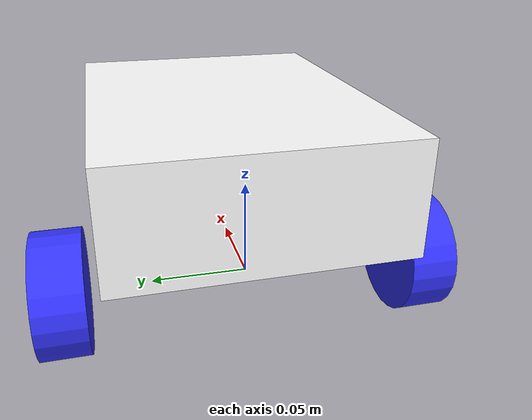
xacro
<?xml version="1.0"?>
<robot xmlns:xacro="http://www.ros.org/wiki/xacro" >

    <xacro:include filename="inertial_macros.xacro"/>

    <material name="white">
        <color rgba="1 1 1 1" />
    </material>

    <material name="orange">
        <color rgba="1 0.3 0.1 1"/>
    </material>

    <material name="blue">
        <color rgba="0.2 0.2 1 1"/>
    </material>

    <material name="black">
        <color rgba="0 0 0 1"/>
    </material>

    <material name="red">
        <color rgba="1 0 0 1"/>
    </material>

    <!-- BASE LINK -->

    <link name="base_link">

    </link>

    <!-- BASE_FOOTPRINT LINK -->
    <joint name="base_footprint_joint" type="fixed">
        <parent link="base_link"/>
        <child link="base_footprint"/>
        <axis xyz="0.0 0.0 0.0"/>
    </joint>

    <link name="base_footprint">
    </link>

    <!-- CHASSIS LINK -->

    <joint name="chassis_joint" type="fixed">
        <parent link="base_link"/>
        <child link="chassis"/>
        <origin xyz="-0.1 0 0"/>
    </joint>

    <link name="chassis">
        <visual>
            <origin xyz="0.15 0 0.055"/>
            <geometry>
                <box size="0.2 0.15 0.06"/>
            </geometry>
            <material name="white"/>
        </visual>
        <collision>
            <origin xyz="0.15 0 0.055"/>
            <geometry>
                <box size="0.2 0.15 0.06"/>
            </geometry>
        </collision>
        <xacro:inertial_box mass="1" x="0.2" y="0.15" z="0.06">
            <origin xyz="0.15 0 0.055" rpy="0 0 0"/>
        </xacro:inertial_box>
    </link>

    <gazebo reference="chassis">
        <material>Gazebo/White</material>
    </gazebo>

    <!-- LEFT WHEEL LINK -->

    <joint name="left_wheel_joint" type="continuous">
        <parent link="base_link"/>
        <child link="left_wheel"/>
        <origin xyz="0 0.095 0" rpy="-${pi/2} 0 0" />
        <axis xyz="0 0 1"/>
    </joint>

    <link name="left_wheel">
        <visual>
            <geometry>
                <cylinder radius="0.0325" length="0.025"/>
            </geometry>
            <material name="blue"/>
        </visual>
        <collision>
            <geometry>
                <sphere radius="0.0325" />
            </geometry>
        </collision>
        <xacro:inertial_cylinder mass="0.1" length="0.025" radius="0.0325">
            <origin xyz="0 0 0" rpy="0 0 0"/>
        </xacro:inertial_cylinder>
    </link>

    <gazebo reference="left_wheel">
        <material>Gazebo/Blue</material>
    </gazebo>

    <!-- RIGHT WHEEL LINK -->

    <joint name="right_wheel_joint" type="continuous">
        <parent link="base_link"/>
        <child link="right_wheel"/>
        <origin xyz="0 -0.095 0" rpy="${pi/2} 0 0" />
        <axis xyz="0 0 -1"/>
    </joint>

    <link name="right_wheel">
        <visual>
            <geometry>
                <cylinder radius="0.0325" length="0.025"/>
            </geometry>
            <material name="blue"/>
        </visual>
        <collision>
            <geometry>
                <sphere radius="0.0325" />
            </geometry>
        </collision>
        <xacro:inertial_cylinder mass="0.1" length="0.025" radius="0.0325">
            <origin xyz="0 0 0" rpy="0 0 0"/>
        </xacro:inertial_cylinder>
    </link>

    <gazebo reference="right_wheel">
        <material>Gazebo/Blue</material>
    </gazebo>

    <!-- CASTER WHEEL LINK -->

    <joint name="caster_wheel_joint" type="fixed">
        <parent link="chassis"/>
        <child link="caster_wheel"/>
        <origin xyz="0.2 0 0"/>
    </joint>

    <link name="caster_wheel">
        <visual>
            <geometry>
                <sphere radius="0.0325"/>
            </geometry>
            <material name="black"/>
        </visual>
        <collision>
            <geometry>
                <sphere radius="0.0325"/>
            </geometry>
        </collision>
        <xacro:inertial_sphere mass="0.1" radius="0.0325">
            <origin xyz="0 0 0" rpy="0 0 0"/>
        </xacro:inertial_sphere>
    </link>

    <gazebo reference="caster_wheel">
        <material>Gazebo/Black</material>
        <mu1 value="0.001"/>
        <mu2 value="0.001"/>
    </gazebo>

</robot>

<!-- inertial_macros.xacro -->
<robot xmlns:xacro="http://www.ros.org/wiki/xacro" >

    <!-- Specify some standard inertial calculations https://en.wikipedia.org/wiki/List_of_moments_of_inertia -->
    <!-- These make use of xacro's mathematical functionality -->

    <xacro:macro name="inertial_sphere" params="mass radius *origin">
        <inertial>
            <xacro:insert_block name="origin"/>
            <mass value="${mass}" />
            <inertia ixx="${(2/5) * mass * (radius*radius)}" ixy="0.0" ixz="0.0"
                    iyy="${(2/5) * mass * (radius*radius)}" iyz="0.0"
                    izz="${(2/5) * mass * (radius*radius)}" />
        </inertial>
    </xacro:macro>

    <xacro:macro name="inertial_box" params="mass x y z *origin">
        <inertial>
            <xacro:insert_block name="origin"/>
            <mass value="${mass}" />
            <inertia ixx="${(1/12) * mass * (y*y+z*z)}" ixy="0.0" ixz="0.0"
                    iyy="${(1/12) * mass * (x*x+z*z)}" iyz="0.0"
                    izz="${(1/12) * mass * (x*x+y*y)}" />
        </inertial>
    </xacro:macro>

    <xacro:macro name="inertial_cylinder" params="mass length radius *origin">
        <inertial>
            <xacro:insert_block name="origin"/>
            <mass value="0.1" />
            <inertia ixx="${(1/12) * 0.1 * (3*0.0325*0.0325 + 0.025*0.025)}" ixy="0.0" ixz="0.0"
                    iyy="${(1/12) * 0.1 * (3*0.0325*0.0325 + 0.025*0.025)}" iyz="0.0"
                    izz="${(1/2) * 0.1 * (0.0325*0.0325)}" />
        </inertial>
    </xacro:macro>

</robot>
